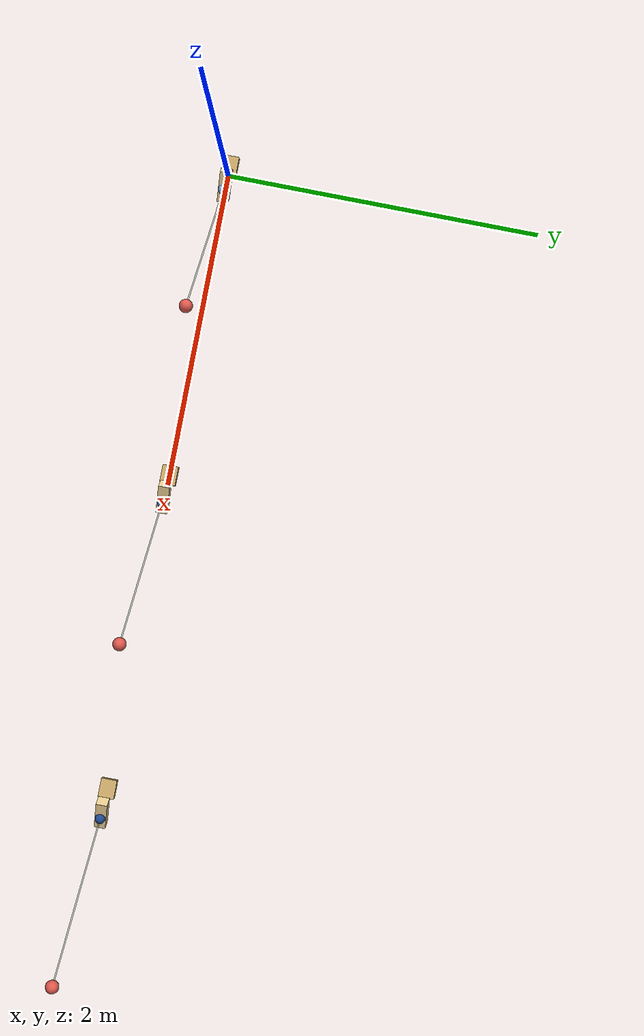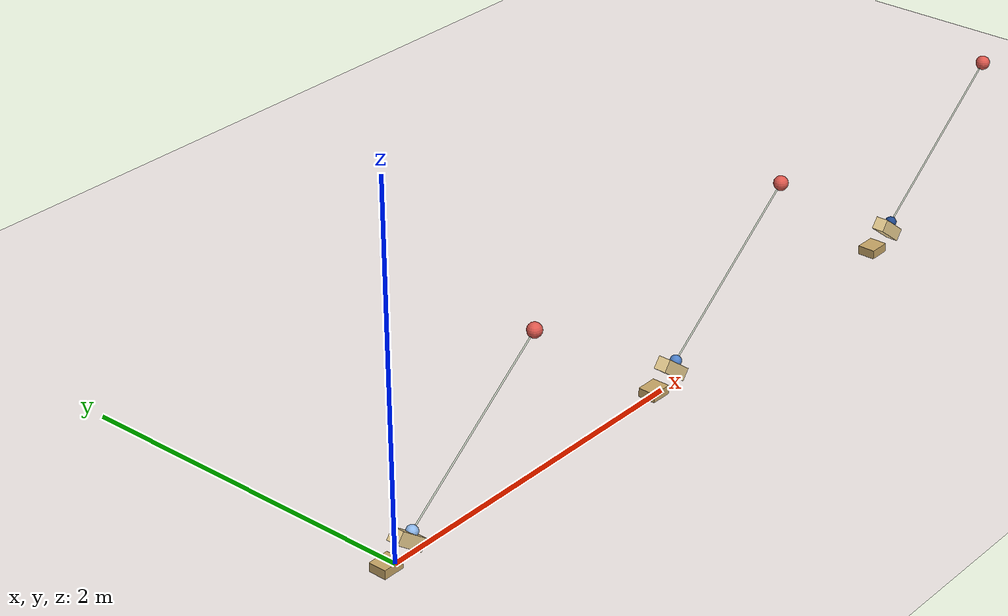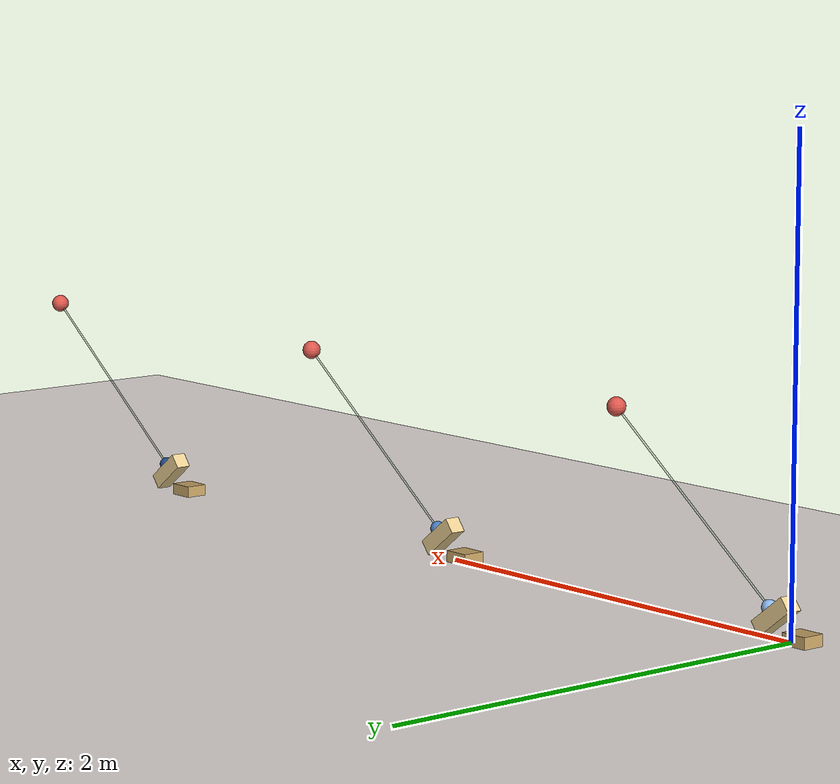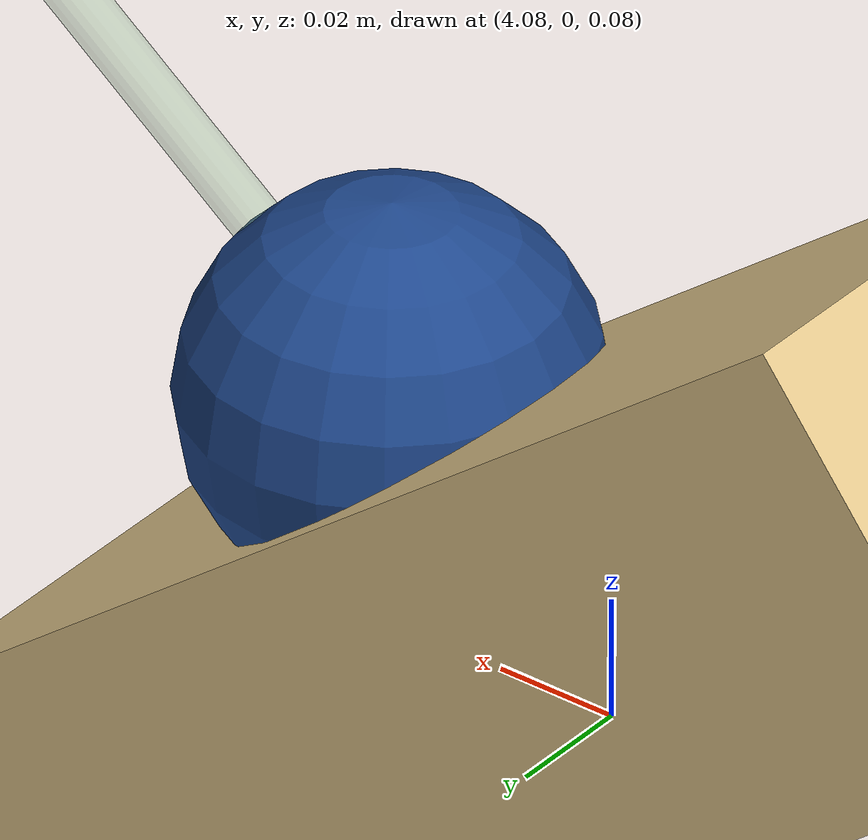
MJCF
<mujoco model="monkey_and_hunter">
  <!-- Scene A speed = 2.85 m/s -->
  <!-- Scene B speed = 3.50 m/s -->
  <!-- Scene C speed = 5.20 m/s -->
  <compiler angle="radian" coordinate="local" autolimits="true"/>
  <option timestep="0.002" gravity="0 0 -9.81" integrator="implicitfast"
          impratio="3" cone="elliptic"/>

  <visual>
    <headlight diffuse="0 0 0" ambient="0.50 0.48 0.55" specular="0 0 0"/>
    <rgba haze="0.94 0.91 0.90 1"/>
    <global azimuth="120" elevation="-15" offwidth="1920" offheight="1080" fovy="38"/>
    <quality shadowsize="8192" offsamples="8"/>
    <map shadowclip="6" shadowscale="0.7"/>
  </visual>

  <asset>
    <texture type="skybox" builtin="flat"
             rgb1="0.74 0.68 0.86" rgb2="0.74 0.68 0.86"
             width="512" height="512" mark="none" markrgb="0 0 0"/>
    <material name="floor_mat" rgba="0.94 0.91 0.90 1" specular="0" shininess="0"/>
    <material name="wood" rgba="0.93 0.82 0.58 1" specular="0.1" shininess="0.1"/>
    <material name="wood_dark" rgba="0.78 0.65 0.40 1" specular="0.1" shininess="0.1"/>
    <material name="dart_slow" rgba="0.55 0.72 0.92 1" specular="0.35" shininess="0.4"/>
    <material name="dart_med" rgba="0.30 0.50 0.78 1" specular="0.35" shininess="0.4"/>
    <material name="dart_fast" rgba="0.12 0.28 0.55 1" specular="0.35" shininess="0.4"/>
    <material name="bob_red" rgba="0.86 0.34 0.30 1" specular="0.35" shininess="0.4"/>
    <material name="marker_mat" rgba="0.28 0.27 0.26 1" specular="0.1" shininess="0.1"/>
  </asset>

  <default>
    <geom friction="0.7 0.04 0.001" solref="0.005 1" solimp="0.95 0.99 0.001"/>
  </default>

  <worldbody>
    <light pos="0 0 12" dir="-0.30 0.55 -1" directional="true" castshadow="true"
           diffuse="0.85 0.82 0.78" specular="0.15 0.15 0.15"/>
    <light pos="0 0 8" dir="0.40 -0.30 -1" directional="true" castshadow="false"
           diffuse="0.28 0.28 0.34" specular="0 0 0"/>

    <geom name="floor" type="plane" size="40 40 0.1" material="floor_mat"/>

    <!-- Scene A (A slow): speed=2.85 m/s
         dart qvel linear=(2.2552, 0.0000, 1.7426) |q|=2.85
         aim: local monkey (1.00,0.80) from local muzzle (0.12,0.12) -->
    <geom name="cannon_base_0" type="box"
          pos="-0.0600 0.0000 0.0250"
          size="0.06 0.05 0.025"
          material="wood_dark" contype="0" conaffinity="0"/>
    <geom name="cannon_barrel_0" type="box"
          pos="0.0844 0.0000 0.0925"
          euler="0 0.657889 0"
          size="0.1 0.035 0.035"
          material="wood" contype="0" conaffinity="0"/>
    <geom name="aim_line_0" type="capsule"
          fromto="0.1200 0.0000 0.1200 1.0000 0.0000 0.8000"
          size="0.004" rgba="0.55 0.72 0.55 0.35"
          contype="0" conaffinity="0"/>
    <geom name="release_marker_0" type="sphere"
          pos="1.0000 0.0000 0.8000" size="0.012"
          material="marker_mat" contype="0" conaffinity="0"/>

    <body name="dart_0" pos="0.1200 0.0000 0.1200">
      <joint name="dart_free_0" type="free"/>
      <geom name="dart_geom_0" type="sphere" size="0.032"
            mass="0.08" material="dart_slow"/>
    </body>

    <body name="monkey_0" pos="1.0000 0.0000 0.8000">
      <joint name="monkey_free_0" type="free"/>
      <geom name="monkey_geom_0" type="sphere" size="0.04"
            mass="0.10" material="bob_red"/>
    </body>

    <!-- Scene B (B medium): speed=3.50 m/s
         dart qvel linear=(2.7695, 0.0000, 2.1401) |q|=3.50
         aim: local monkey (1.00,0.80) from local muzzle (0.12,0.12) -->
    <geom name="cannon_base_1" type="box"
          pos="1.9400 0.0000 0.0250"
          size="0.06 0.05 0.025"
          material="wood_dark" contype="0" conaffinity="0"/>
    <geom name="cannon_barrel_1" type="box"
          pos="2.0844 0.0000 0.0925"
          euler="0 0.657889 0"
          size="0.1 0.035 0.035"
          material="wood" contype="0" conaffinity="0"/>
    <geom name="aim_line_1" type="capsule"
          fromto="2.1200 0.0000 0.1200 3.0000 0.0000 0.8000"
          size="0.004" rgba="0.55 0.72 0.55 0.35"
          contype="0" conaffinity="0"/>
    <geom name="release_marker_1" type="sphere"
          pos="3.0000 0.0000 0.8000" size="0.012"
          material="marker_mat" contype="0" conaffinity="0"/>

    <body name="dart_1" pos="2.1200 0.0000 0.1200">
      <joint name="dart_free_1" type="free"/>
      <geom name="dart_geom_1" type="sphere" size="0.032"
            mass="0.08" material="dart_med"/>
    </body>

    <body name="monkey_1" pos="3.0000 0.0000 0.8000">
      <joint name="monkey_free_1" type="free"/>
      <geom name="monkey_geom_1" type="sphere" size="0.04"
            mass="0.10" material="bob_red"/>
    </body>

    <!-- Scene C (C fast): speed=5.20 m/s
         dart qvel linear=(4.1147, 0.0000, 3.1795) |q|=5.20
         aim: local monkey (1.00,0.80) from local muzzle (0.12,0.12) -->
    <geom name="cannon_base_2" type="box"
          pos="3.9400 0.0000 0.0250"
          size="0.06 0.05 0.025"
          material="wood_dark" contype="0" conaffinity="0"/>
    <geom name="cannon_barrel_2" type="box"
          pos="4.0844 0.0000 0.0925"
          euler="0 0.657889 0"
          size="0.1 0.035 0.035"
          material="wood" contype="0" conaffinity="0"/>
    <geom name="aim_line_2" type="capsule"
          fromto="4.1200 0.0000 0.1200 5.0000 0.0000 0.8000"
          size="0.004" rgba="0.55 0.72 0.55 0.35"
          contype="0" conaffinity="0"/>
    <geom name="release_marker_2" type="sphere"
          pos="5.0000 0.0000 0.8000" size="0.012"
          material="marker_mat" contype="0" conaffinity="0"/>

    <body name="dart_2" pos="4.1200 0.0000 0.1200">
      <joint name="dart_free_2" type="free"/>
      <geom name="dart_geom_2" type="sphere" size="0.032"
            mass="0.08" material="dart_fast"/>
    </body>

    <body name="monkey_2" pos="5.0000 0.0000 0.8000">
      <joint name="monkey_free_2" type="free"/>
      <geom name="monkey_geom_2" type="sphere" size="0.04"
            mass="0.10" material="bob_red"/>
    </body>

    <camera name="cam" pos="2.5000 -4.5000 0.4600" fovy="38"
            xyaxes="1.000 0.000 0.000   0.000 0.000 1.000"/>
  </worldbody>
</mujoco>
